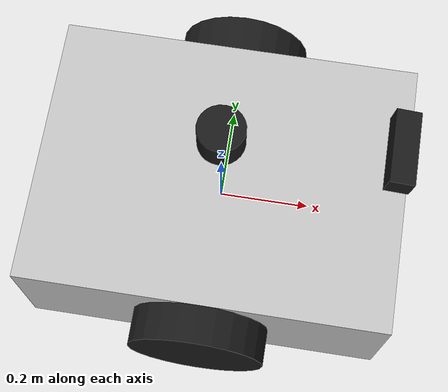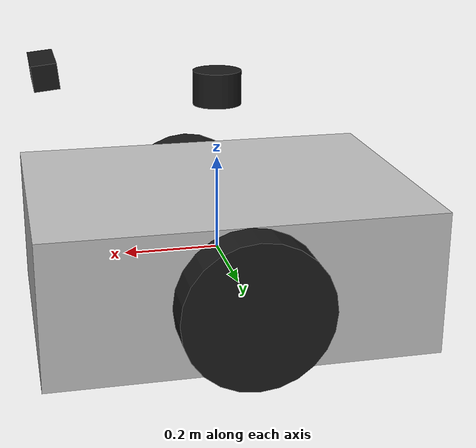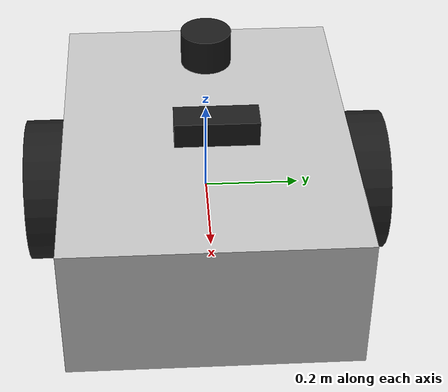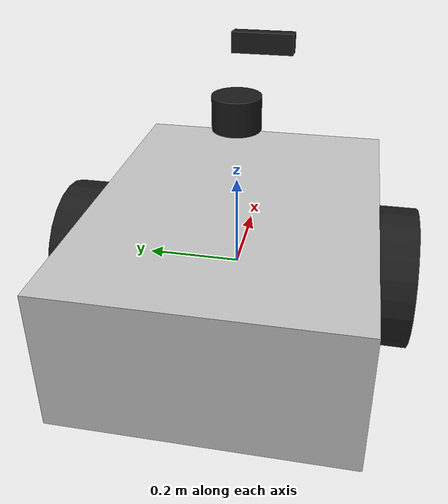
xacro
<?xml version="1.0"?>
<robot xmlns:xacro="http://www.ros.org/wiki/xacro">

  <!-- Include main rover file -->
  <xacro:include filename="$(find rover_description)/urdf/rover.urdf.xacro"/>

  <!-- ==================== CAMERA SENSOR ==================== -->
  <link name="camera_link">
    <visual>
      <geometry>
        <box size="0.05 0.15 0.05"/> <!-- Camera housing -->
      </geometry>
      <material name="black"/>
    </visual>

    <inertial>
      <mass value="0.1"/>
      <inertia
        ixx="0.0001" ixy="0.0" ixz="0.0"
        iyy="0.0001" iyz="0.0"
        izz="0.0001"/>
    </inertial>
  </link>

  <joint name="camera_joint" type="fixed">
    <parent link="base_link"/>
    <child link="camera_link"/>
    <origin xyz="0.35 0 0.4" rpy="0 0.1 0"/> <!-- Forward, elevated, 0.1 rad tilt down -->
  </joint>

  <gazebo reference="camera_link">
    <sensor name="camera" type="camera">
      <update_rate>10.0</update_rate> <!-- 10 Hz -->
      <camera name="front_camera">
        <horizontal_fov>1.3962634</horizontal_fov>
        <image>
          <width>1280</width>
          <height>960</height>
          <format>R8G8B8</format> <!-- RGB -->
        </image>
        <clip>
          <near>0.1</near> <!-- Min distance -->
          <far>100</far> <!-- Max distance -->
        </clip>
        <noise>
          <type>gaussian</type>
          <mean>0.0</mean>
          <stddev>0.007</stddev> <!-- Realistic sensor noise -->
        </noise>
      </camera>

      <plugin name="camera_controller" filename="libgazebo_ros_camera.so">
        <always_on>true</always_on>
        <update_rate>10.0</update_rate>
        <camera_name>front_camera</camera_name>
        <image_topic_name>camera/image_raw</image_topic_name>
        <camera_info_topic_name>camera/camera_info</camera_info_topic_name>
        <frame_name>camera_link</frame_name>
        <hack_baseline>0.07</hack_baseline>
      </plugin>
    </sensor>
  </gazebo>

  <!-- ==================== LIDAR SENSOR ==================== -->
  <link name="lidar_link">
    <visual>
      <geometry>
        <cylinder radius="0.05" length="0.07"/>
      </geometry>
      <material name="black"/>
    </visual>

    <inertial>
      <mass value="0.2"/>
      <inertia
        ixx="0.0001" ixy="0.0" ixz="0.0"
        iyy="0.0001" iyz="0.0"
        izz="0.0001"/>
    </inertial>
  </link>

  <joint name="lidar_joint" type="fixed">
    <parent link="base_link"/>
    <child link="lidar_link"/>
    <origin xyz="0 0 0.35" rpy="0 0 0"/>
  </joint>

  <gazebo reference="lidar_link">
    <sensor name="lidar" type="ray">
      <pose>0 0 0 0 0 0</pose>
      <visualize>true</visualize>
      <update_rate>10</update_rate>
      <ray>
        <scan>
          <horizontal>
            <samples>360</samples>    <!-- 360° coverage -->
            <resolution>1</resolution>    <!-- 1° steps -->
            <min_angle>-3.14159</min_angle>
            <max_angle>3.14159</max_angle>
          </horizontal>
        </scan>
        <range>
          <min>0.3</min>   <!-- 30 cm minimum -->
          <max>30.0</max>   <!-- 30 m maximum -->
          <resolution>0.01</resolution>  <!-- 1 cm accuracy -->
        </range>
        <noise>
          <type>gaussian</type>
          <mean>0.0</mean>
          <stddev>0.01</stddev>  <!-- 1 cm noise -->
        </noise>
      </ray>

      <plugin name="lidar_controller" filename="libgazebo_ros_ray_sensor.so">
        <topic_name>scan</topic_name>
        <frame_name>lidar_link</frame_name>
      </plugin>
    </sensor>
  </gazebo>

  <!-- ==================== IMU SENSOR ==================== -->
  <link name="imu_link">
    <inertial>
      <mass value="0.01"/>
      <inertia
        ixx="0.000001" ixy="0.0" ixz="0.0"
        iyy="0.000001" iyz="0.0"
        izz="0.000001"/>
    </inertial>
  </link>

  <joint name="imu_joint" type="fixed">
    <parent link="base_link"/>
    <child link="imu_link"/>
    <origin xyz="0 0 0" rpy="0 0 0"/> <!-- Center of mass -->
  </joint>

  <gazebo reference="imu_link">
    <sensor name="imu" type="imu">
      <always_on>true</always_on>
      <update_rate>100</update_rate> <!-- 100 Hz -->
      <imu>
        <angular_velocity>
          <x>
            <noise type="gaussian">
              <mean>0.0</mean>
              <stddev>0.0002</stddev>
              <bias_mean>0.0000075</bias_mean>
              <bias_stddev>0.0000008</bias_stddev>
            </noise>
          </x>
          <y>
            <noise type="gaussian">
              <mean>0.0</mean>
              <stddev>0.0002</stddev>
              <bias_mean>0.0000075</bias_mean>
              <bias_stddev>0.0000008</bias_stddev>
            </noise>
          </y>
          <z>
            <noise type="gaussian">
              <mean>0.0</mean>
              <stddev>0.0002</stddev>
              <bias_mean>0.0000075</bias_mean>
              <bias_stddev>0.0000008</bias_stddev>
            </noise>
          </z>
        </angular_velocity>
        <linear_acceleration>
          <x>
            <noise type="gaussian">
              <mean>0.0</mean>
              <stddev>0.017</stddev>
              <bias_mean>0.1</bias_mean>
              <bias_stddev>0.001</bias_stddev>
            </noise>
          </x>
          <y>
            <noise type="gaussian">
              <mean>0.0</mean>
              <stddev>0.017</stddev>
              <bias_mean>0.1</bias_mean>
              <bias_stddev>0.001</bias_stddev>
            </noise>
          </y>
          <z>
            <noise type="gaussian">
              <mean>0.0</mean>
              <stddev>0.017</stddev>
              <bias_mean>0.1</bias_mean>
              <bias_stddev>0.001</bias_stddev>
            </noise>
          </z>
        </linear_acceleration>
      </imu>

      <plugin name="imu_controller" filename="libgazebo_ros_imu_sensor.so">
        <topic_name>imu</topic_name>
        <body_name>imu_link</body_name>
        <update_rate>100.0</update_rate>
        <gravity>true</gravity>
        <frame_name>imu_link</frame_name>
      </plugin>
    </sensor>
  </gazebo>

</robot>

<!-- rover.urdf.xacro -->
<robot name="mars_rover" xmlns:xacro="http://www.ros.org/wiki/xacro">

  <!-- Material definitions -->
  <material name="silver">
    <color rgba="0.75 0.75 0.75 1.0"/>
  </material>

  <material name="black">
    <color rgba="0.1 0.1 0.1 1.0"/>
  </material>

  <!-- Constants -->
  <xacro:property name="M_PI" value="3.1415926535897931"/>

  <!-- Rover dimensions -->
  <xacro:property name="chassis_length" value="0.8"/>
  <xacro:property name="chassis_width" value="0.6"/>
  <xacro:property name="chassis_height" value="0.3"/>
  <xacro:property name="chassis_mass" value="30.0"/>

  <!-- Wheel properties -->
  <xacro:property name="wheel_radius" value="0.15"/>
  <xacro:property name="wheel_width" value="0.08"/>
  <xacro:property name="wheel_mass" value="2.0"/>
  <xacro:property name="wheel_separation" value="0.68"/>

  <!-- ==================== BASE LINK (CHASSIS) ==================== -->
  <link name="base_link">
    <visual>
      <geometry>
        <box size="${chassis_length} ${chassis_width} ${chassis_height}"/>
      </geometry>
      <material name="silver"/>
    </visual>

    <collision>
      <geometry>
        <box size="${chassis_length} ${chassis_width} ${chassis_height}"/>
      </geometry>
    </collision>

    <inertial>
      <mass value="${chassis_mass}"/>
      <inertia
        ixx="1.5" ixy="0.0" ixz="0.0"
        iyy="2.0" iyz="0.0"
        izz="2.5"/>
    </inertial>
  </link>

  <!-- ==================== WHEEL MACRO ==================== -->
  <xacro:macro name="wheel" params="prefix y_offset">
    <link name="${prefix}_wheel">
      <visual>
        <geometry>
          <cylinder radius="${wheel_radius}" length="${wheel_width}"/>
        </geometry>
        <material name="black"/>
      </visual>

      <collision>
        <geometry>
          <cylinder radius="${wheel_radius}" length="${wheel_width}"/>
        </geometry>
      </collision>

      <inertial>
        <mass value="${wheel_mass}"/>
        <inertia
          ixx="0.01" ixy="0.0" ixz="0.0"
          iyy="0.01" iyz="0.0"
          izz="0.01"/>
      </inertial>
    </link>

    <joint name="${prefix}_wheel_joint" type="continuous">
      <parent link="base_link"/>
      <child link="${prefix}_wheel"/>
      <origin xyz="0 ${y_offset} 0" rpy="${M_PI/2} 0 0"/>
      <axis xyz="0 0 1"/>
    </joint>
  </xacro:macro>

  <!-- ==================== CASTER MACRO ==================== -->
  <xacro:macro name="caster" params="prefix x_offset">
    <link name="${prefix}_caster">
      <visual>
        <geometry>
          <sphere radius="0.05"/>
        </geometry>
        <material name="black"/>
      </visual>

      <collision>
        <geometry>
          <sphere radius="0.05"/>
        </geometry>
      </collision>

      <inertial>
        <mass value="0.5"/>
        <inertia
          ixx="0.001" ixy="0.0" ixz="0.0"
          iyy="0.001" iyz="0.0"
          izz="0.001"/>
      </inertial>
    </link>

    <joint name="${prefix}_caster_joint" type="fixed">
      <parent link="base_link"/>
      <child link="${prefix}_caster"/>
      <origin xyz="${x_offset} 0 -0.1" rpy="0 0 0"/>
    </joint>
  </xacro:macro>

  <!-- ==================== INSTANTIATE COMPONENTS ==================== -->

  <!-- Main wheels -->
  <xacro:wheel prefix="left" y_offset="0.34"/>
  <xacro:wheel prefix="right" y_offset="-0.34"/>

  <!-- Casters for stability -->
  <xacro:caster prefix="front" x_offset="0.3"/>
  <xacro:caster prefix="rear" x_offset="-0.3"/>

  <!-- ==================== GAZEBO PLUGINS ==================== -->

  <!-- Differential Drive Controller -->
  <gazebo>
    <plugin name="differential_drive_controller" filename="libgazebo_ros_diff_drive.so">
      <update_rate>50</update_rate>

      <!-- Wheel Configuration -->
      <left_joint>left_wheel_joint</left_joint>
      <right_joint>right_wheel_joint</right_joint>
      <wheel_separation>${wheel_separation}</wheel_separation>
      <wheel_diameter>${wheel_radius * 2}</wheel_diameter>

      <!-- Limits -->
      <max_wheel_torque>20</max_wheel_torque>
      <max_wheel_acceleration>1.0</max_wheel_acceleration>

      <!-- Topics -->
      <command_topic>cmd_vel</command_topic>
      <odometry_topic>odom</odometry_topic>
      <odometry_frame>odom</odometry_frame>

      <!-- Odometry -->
      <publish_odom>true</publish_odom>
      <publish_odom_tf>true</publish_odom_tf>
      <publish_wheel_tf>true</publish_wheel_tf>

      <!-- Frames -->
      <robot_base_frame>base_link</robot_base_frame>
    </plugin>
  </gazebo>

  <!-- ROS Control -->
  <gazebo>
    <plugin name="gazebo_ros_control" filename="libgazebo_ros_control.so">
      <robot_namespace>/</robot_namespace>
    </plugin>
  </gazebo>

</robot>
